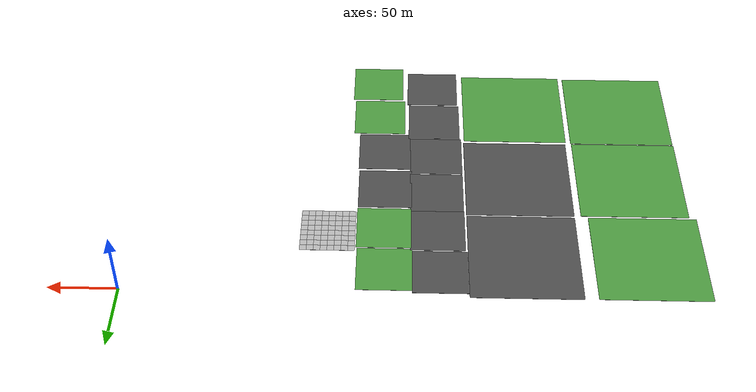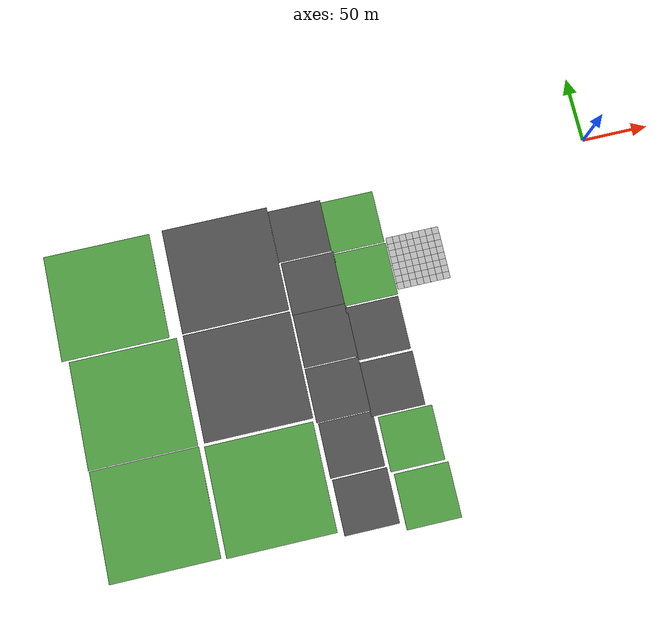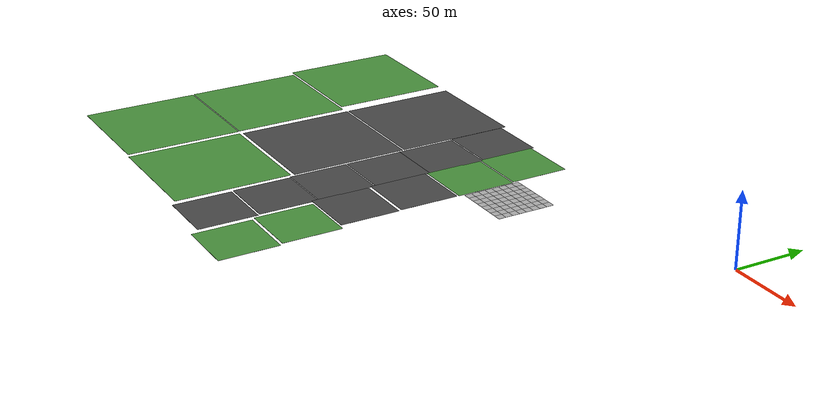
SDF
<sdf version="1.7">
 <world name="default">
  <model name="mud_plane_80x80_4">
   <model name="mud_plane_40x40_2">
    <model name="mud_plane_20x20">
     <model name="mud_plane">
      <static>1</static>
      <link name="link">
       <collision name="collision"><geometry><box><size>10 10 0.1</size></box></geometry></collision>
       <visual name="visual_1">
        <pose>-2.5 2.5 -0.05 0 -0 0</pose>
        <cast_shadows>0</cast_shadows>
        <geometry><box><size>5 5 0.1</size></box></geometry>
        <material>
         <script>
          <uri>model://mud_plane/materials/scripts</uri>
          <uri>model://mud_plane/materials/textures</uri>
          <name>vrc/mud</name>
         </script>
        </material>
       </visual>
       <visual name="visual_2">
        <pose>2.5 2.5 -0.05 0 -0 0</pose>
        <cast_shadows>0</cast_shadows>
        <geometry><box><size>5 5 0.1</size></box></geometry>
        <material>
         <script>
          <uri>model://mud_plane/materials/scripts</uri>
          <uri>model://mud_plane/materials/textures</uri>
          <name>vrc/mud</name>
         </script>
        </material>
       </visual>
       <visual name="visual_3">
        <pose>2.5 -2.5 -0.05 0 -0 0</pose>
        <cast_shadows>0</cast_shadows>
        <geometry><box><size>5 5 0.1</size></box></geometry>
        <material>
         <script>
          <uri>model://mud_plane/materials/scripts</uri>
          <uri>model://mud_plane/materials/textures</uri>
          <name>vrc/mud</name>
         </script>
        </material>
       </visual>
       <visual name="visual_4">
        <pose>-2.5 -2.5 -0.05 0 -0 0</pose>
        <cast_shadows>0</cast_shadows>
        <geometry><box><size>5 5 0.1</size></box></geometry>
        <material>
         <script>
          <uri>model://mud_plane/materials/scripts</uri>
          <uri>model://mud_plane/materials/textures</uri>
          <name>vrc/mud</name>
         </script>
        </material>
       </visual>
      </link>
      <pose>-4.99986 -4.99991 0 0 -0 0</pose>
     </model>
     <model name="mud_plane_0">
      <static>1</static>
      <link name="link">
       <collision name="collision"><geometry><box><size>10 10 0.1</size></box></geometry></collision>
       <visual name="visual_1">
        <pose>-2.5 2.5 -0.05 0 -0 0</pose>
        <cast_shadows>0</cast_shadows>
        <geometry><box><size>5 5 0.1</size></box></geometry>
        <material>
         <script>
          <uri>model://mud_plane/materials/scripts</uri>
          <uri>model://mud_plane/materials/textures</uri>
          <name>vrc/mud</name>
         </script>
        </material>
       </visual>
       <visual name="visual_2">
        <pose>2.5 2.5 -0.05 0 -0 0</pose>
        <cast_shadows>0</cast_shadows>
        <geometry><box><size>5 5 0.1</size></box></geometry>
        <material>
         <script>
          <uri>model://mud_plane/materials/scripts</uri>
          <uri>model://mud_plane/materials/textures</uri>
          <name>vrc/mud</name>
         </script>
        </material>
       </visual>
       <visual name="visual_3">
        <pose>2.5 -2.5 -0.05 0 -0 0</pose>
        <cast_shadows>0</cast_shadows>
        <geometry><box><size>5 5 0.1</size></box></geometry>
        <material>
         <script>
          <uri>model://mud_plane/materials/scripts</uri>
          <uri>model://mud_plane/materials/textures</uri>
          <name>vrc/mud</name>
         </script>
        </material>
       </visual>
       <visual name="visual_4">
        <pose>-2.5 -2.5 -0.05 0 -0 0</pose>
        <cast_shadows>0</cast_shadows>
        <geometry><box><size>5 5 0.1</size></box></geometry>
        <material>
         <script>
          <uri>model://mud_plane/materials/scripts</uri>
          <uri>model://mud_plane/materials/textures</uri>
          <name>vrc/mud</name>
         </script>
        </material>
       </visual>
      </link>
      <pose>-4.99946 4.99954 0 0 -0 0</pose>
     </model>
     <model name="mud_plane_1">
      <static>1</static>
      <link name="link">
       <collision name="collision"><geometry><box><size>10 10 0.1</size></box></geometry></collision>
       <visual name="visual_1">
        <pose>-2.5 2.5 -0.05 0 -0 0</pose>
        <cast_shadows>0</cast_shadows>
        <geometry><box><size>5 5 0.1</size></box></geometry>
        <material>
         <script>
          <uri>model://mud_plane/materials/scripts</uri>
          <uri>model://mud_plane/materials/textures</uri>
          <name>vrc/mud</name>
         </script>
        </material>
       </visual>
       <visual name="visual_2">
        <pose>2.5 2.5 -0.05 0 -0 0</pose>
        <cast_shadows>0</cast_shadows>
        <geometry><box><size>5 5 0.1</size></box></geometry>
        <material>
         <script>
          <uri>model://mud_plane/materials/scripts</uri>
          <uri>model://mud_plane/materials/textures</uri>
          <name>vrc/mud</name>
         </script>
        </material>
       </visual>
       <visual name="visual_3">
        <pose>2.5 -2.5 -0.05 0 -0 0</pose>
        <cast_shadows>0</cast_shadows>
        <geometry><box><size>5 5 0.1</size></box></geometry>
        <material>
         <script>
          <uri>model://mud_plane/materials/scripts</uri>
          <uri>model://mud_plane/materials/textures</uri>
          <name>vrc/mud</name>
         </script>
        </material>
       </visual>
       <visual name="visual_4">
        <pose>-2.5 -2.5 -0.05 0 -0 0</pose>
        <cast_shadows>0</cast_shadows>
        <geometry><box><size>5 5 0.1</size></box></geometry>
        <material>
         <script>
          <uri>model://mud_plane/materials/scripts</uri>
          <uri>model://mud_plane/materials/textures</uri>
          <name>vrc/mud</name>
         </script>
        </material>
       </visual>
      </link>
      <pose>4.99964 -4.99949 0 0 -0 0</pose>
     </model>
     <model name="mud_plane_2">
      <static>1</static>
      <link name="link">
       <collision name="collision"><geometry><box><size>10 10 0.1</size></box></geometry></collision>
       <visual name="visual_1">
        <pose>-2.5 2.5 -0.05 0 -0 0</pose>
        <cast_shadows>0</cast_shadows>
        <geometry><box><size>5 5 0.1</size></box></geometry>
        <material>
         <script>
          <uri>model://mud_plane/materials/scripts</uri>
          <uri>model://mud_plane/materials/textures</uri>
          <name>vrc/mud</name>
         </script>
        </material>
       </visual>
       <visual name="visual_2">
        <pose>2.5 2.5 -0.05 0 -0 0</pose>
        <cast_shadows>0</cast_shadows>
        <geometry><box><size>5 5 0.1</size></box></geometry>
        <material>
         <script>
          <uri>model://mud_plane/materials/scripts</uri>
          <uri>model://mud_plane/materials/textures</uri>
          <name>vrc/mud</name>
         </script>
        </material>
       </visual>
       <visual name="visual_3">
        <pose>2.5 -2.5 -0.05 0 -0 0</pose>
        <cast_shadows>0</cast_shadows>
        <geometry><box><size>5 5 0.1</size></box></geometry>
        <material>
         <script>
          <uri>model://mud_plane/materials/scripts</uri>
          <uri>model://mud_plane/materials/textures</uri>
          <name>vrc/mud</name>
         </script>
        </material>
       </visual>
       <visual name="visual_4">
        <pose>-2.5 -2.5 -0.05 0 -0 0</pose>
        <cast_shadows>0</cast_shadows>
        <geometry><box><size>5 5 0.1</size></box></geometry>
        <material>
         <script>
          <uri>model://mud_plane/materials/scripts</uri>
          <uri>model://mud_plane/materials/textures</uri>
          <name>vrc/mud</name>
         </script>
        </material>
       </visual>
      </link>
      <pose>4.99967 4.99986 0 0 -0 0</pose>
     </model>
     <static>0</static>
     <pose>-9.99895 9.99843 0 0 -0 0</pose>
    </model>
    <model name="mud_plane_20x20_0">
     <model name="mud_plane">
      <static>1</static>
      <link name="link">
       <collision name="collision"><geometry><box><size>10 10 0.1</size></box></geometry></collision>
       <visual name="visual_1">
        <pose>-2.5 2.5 -0.05 0 -0 0</pose>
        <cast_shadows>0</cast_shadows>
        <geometry><box><size>5 5 0.1</size></box></geometry>
        <material>
         <script>
          <uri>model://mud_plane/materials/scripts</uri>
          <uri>model://mud_plane/materials/textures</uri>
          <name>vrc/mud</name>
         </script>
        </material>
       </visual>
       <visual name="visual_2">
        <pose>2.5 2.5 -0.05 0 -0 0</pose>
        <cast_shadows>0</cast_shadows>
        <geometry><box><size>5 5 0.1</size></box></geometry>
        <material>
         <script>
          <uri>model://mud_plane/materials/scripts</uri>
          <uri>model://mud_plane/materials/textures</uri>
          <name>vrc/mud</name>
         </script>
        </material>
       </visual>
       <visual name="visual_3">
        <pose>2.5 -2.5 -0.05 0 -0 0</pose>
        <cast_shadows>0</cast_shadows>
        <geometry><box><size>5 5 0.1</size></box></geometry>
        <material>
         <script>
          <uri>model://mud_plane/materials/scripts</uri>
          <uri>model://mud_plane/materials/textures</uri>
          <name>vrc/mud</name>
         </script>
        </material>
       </visual>
       <visual name="visual_4">
        <pose>-2.5 -2.5 -0.05 0 -0 0</pose>
        <cast_shadows>0</cast_shadows>
        <geometry><box><size>5 5 0.1</size></box></geometry>
        <material>
         <script>
          <uri>model://mud_plane/materials/scripts</uri>
          <uri>model://mud_plane/materials/textures</uri>
          <name>vrc/mud</name>
         </script>
        </material>
       </visual>
      </link>
      <pose>-4.99986 -4.99991 0 0 -0 0</pose>
     </model>
     <model name="mud_plane_0">
      <static>1</static>
      <link name="link">
       <collision name="collision"><geometry><box><size>10 10 0.1</size></box></geometry></collision>
       <visual name="visual_1">
        <pose>-2.5 2.5 -0.05 0 -0 0</pose>
        <cast_shadows>0</cast_shadows>
        <geometry><box><size>5 5 0.1</size></box></geometry>
        <material>
         <script>
          <uri>model://mud_plane/materials/scripts</uri>
          <uri>model://mud_plane/materials/textures</uri>
          <name>vrc/mud</name>
         </script>
        </material>
       </visual>
       <visual name="visual_2">
        <pose>2.5 2.5 -0.05 0 -0 0</pose>
        <cast_shadows>0</cast_shadows>
        <geometry><box><size>5 5 0.1</size></box></geometry>
        <material>
         <script>
          <uri>model://mud_plane/materials/scripts</uri>
          <uri>model://mud_plane/materials/textures</uri>
          <name>vrc/mud</name>
         </script>
        </material>
       </visual>
       <visual name="visual_3">
        <pose>2.5 -2.5 -0.05 0 -0 0</pose>
        <cast_shadows>0</cast_shadows>
        <geometry><box><size>5 5 0.1</size></box></geometry>
        <material>
         <script>
          <uri>model://mud_plane/materials/scripts</uri>
          <uri>model://mud_plane/materials/textures</uri>
          <name>vrc/mud</name>
         </script>
        </material>
       </visual>
       <visual name="visual_4">
        <pose>-2.5 -2.5 -0.05 0 -0 0</pose>
        <cast_shadows>0</cast_shadows>
        <geometry><box><size>5 5 0.1</size></box></geometry>
        <material>
         <script>
          <uri>model://mud_plane/materials/scripts</uri>
          <uri>model://mud_plane/materials/textures</uri>
          <name>vrc/mud</name>
         </script>
        </material>
       </visual>
      </link>
      <pose>-4.99946 4.99954 0 0 -0 0</pose>
     </model>
     <model name="mud_plane_1">
      <static>1</static>
      <link name="link">
       <collision name="collision"><geometry><box><size>10 10 0.1</size></box></geometry></collision>
       <visual name="visual_1">
        <pose>-2.5 2.5 -0.05 0 -0 0</pose>
        <cast_shadows>0</cast_shadows>
        <geometry><box><size>5 5 0.1</size></box></geometry>
        <material>
         <script>
          <uri>model://mud_plane/materials/scripts</uri>
          <uri>model://mud_plane/materials/textures</uri>
          <name>vrc/mud</name>
         </script>
        </material>
       </visual>
       <visual name="visual_2">
        <pose>2.5 2.5 -0.05 0 -0 0</pose>
        <cast_shadows>0</cast_shadows>
        <geometry><box><size>5 5 0.1</size></box></geometry>
        <material>
         <script>
          <uri>model://mud_plane/materials/scripts</uri>
          <uri>model://mud_plane/materials/textures</uri>
          <name>vrc/mud</name>
         </script>
        </material>
       </visual>
       <visual name="visual_3">
        <pose>2.5 -2.5 -0.05 0 -0 0</pose>
        <cast_shadows>0</cast_shadows>
        <geometry><box><size>5 5 0.1</size></box></geometry>
        <material>
         <script>
          <uri>model://mud_plane/materials/scripts</uri>
          <uri>model://mud_plane/materials/textures</uri>
          <name>vrc/mud</name>
         </script>
        </material>
       </visual>
       <visual name="visual_4">
        <pose>-2.5 -2.5 -0.05 0 -0 0</pose>
        <cast_shadows>0</cast_shadows>
        <geometry><box><size>5 5 0.1</size></box></geometry>
        <material>
         <script>
          <uri>model://mud_plane/materials/scripts</uri>
          <uri>model://mud_plane/materials/textures</uri>
          <name>vrc/mud</name>
         </script>
        </material>
       </visual>
      </link>
      <pose>4.99964 -4.99949 0 0 -0 0</pose>
     </model>
     <model name="mud_plane_2">
      <static>1</static>
      <link name="link">
       <collision name="collision"><geometry><box><size>10 10 0.1</size></box></geometry></collision>
       <visual name="visual_1">
        <pose>-2.5 2.5 -0.05 0 -0 0</pose>
        <cast_shadows>0</cast_shadows>
        <geometry><box><size>5 5 0.1</size></box></geometry>
        <material>
         <script>
          <uri>model://mud_plane/materials/scripts</uri>
          <uri>model://mud_plane/materials/textures</uri>
          <name>vrc/mud</name>
         </script>
        </material>
       </visual>
       <visual name="visual_2">
        <pose>2.5 2.5 -0.05 0 -0 0</pose>
        <cast_shadows>0</cast_shadows>
        <geometry><box><size>5 5 0.1</size></box></geometry>
        <material>
         <script>
          <uri>model://mud_plane/materials/scripts</uri>
          <uri>model://mud_plane/materials/textures</uri>
          <name>vrc/mud</name>
         </script>
        </material>
       </visual>
       <visual name="visual_3">
        <pose>2.5 -2.5 -0.05 0 -0 0</pose>
        <cast_shadows>0</cast_shadows>
        <geometry><box><size>5 5 0.1</size></box></geometry>
        <material>
         <script>
          <uri>model://mud_plane/materials/scripts</uri>
          <uri>model://mud_plane/materials/textures</uri>
          <name>vrc/mud</name>
         </script>
        </material>
       </visual>
       <visual name="visual_4">
        <pose>-2.5 -2.5 -0.05 0 -0 0</pose>
        <cast_shadows>0</cast_shadows>
        <geometry><box><size>5 5 0.1</size></box></geometry>
        <material>
         <script>
          <uri>model://mud_plane/materials/scripts</uri>
          <uri>model://mud_plane/materials/textures</uri>
          <name>vrc/mud</name>
         </script>
        </material>
       </visual>
      </link>
      <pose>4.99967 4.99986 0 0 -0 0</pose>
     </model>
     <static>0</static>
     <pose>9.99933 9.9997 0 0 -0 0</pose>
    </model>
    <model name="mud_plane_20x20_1">
     <model name="mud_plane">
      <static>1</static>
      <link name="link">
       <collision name="collision"><geometry><box><size>10 10 0.1</size></box></geometry></collision>
       <visual name="visual_1">
        <pose>-2.5 2.5 -0.05 0 -0 0</pose>
        <cast_shadows>0</cast_shadows>
        <geometry><box><size>5 5 0.1</size></box></geometry>
        <material>
         <script>
          <uri>model://mud_plane/materials/scripts</uri>
          <uri>model://mud_plane/materials/textures</uri>
          <name>vrc/mud</name>
         </script>
        </material>
       </visual>
       <visual name="visual_2">
        <pose>2.5 2.5 -0.05 0 -0 0</pose>
        <cast_shadows>0</cast_shadows>
        <geometry><box><size>5 5 0.1</size></box></geometry>
        <material>
         <script>
          <uri>model://mud_plane/materials/scripts</uri>
          <uri>model://mud_plane/materials/textures</uri>
          <name>vrc/mud</name>
         </script>
        </material>
       </visual>
       <visual name="visual_3">
        <pose>2.5 -2.5 -0.05 0 -0 0</pose>
        <cast_shadows>0</cast_shadows>
        <geometry><box><size>5 5 0.1</size></box></geometry>
        <material>
         <script>
          <uri>model://mud_plane/materials/scripts</uri>
          <uri>model://mud_plane/materials/textures</uri>
          <name>vrc/mud</name>
         </script>
        </material>
       </visual>
       <visual name="visual_4">
        <pose>-2.5 -2.5 -0.05 0 -0 0</pose>
        <cast_shadows>0</cast_shadows>
        <geometry><box><size>5 5 0.1</size></box></geometry>
        <material>
         <script>
          <uri>model://mud_plane/materials/scripts</uri>
          <uri>model://mud_plane/materials/textures</uri>
          <name>vrc/mud</name>
         </script>
        </material>
       </visual>
      </link>
      <pose>-4.99986 -4.99991 0 0 -0 0</pose>
     </model>
     <model name="mud_plane_0">
      <static>1</static>
      <link name="link">
       <collision name="collision"><geometry><box><size>10 10 0.1</size></box></geometry></collision>
       <visual name="visual_1">
        <pose>-2.5 2.5 -0.05 0 -0 0</pose>
        <cast_shadows>0</cast_shadows>
        <geometry><box><size>5 5 0.1</size></box></geometry>
        <material>
         <script>
          <uri>model://mud_plane/materials/scripts</uri>
          <uri>model://mud_plane/materials/textures</uri>
          <name>vrc/mud</name>
         </script>
        </material>
       </visual>
       <visual name="visual_2">
        <pose>2.5 2.5 -0.05 0 -0 0</pose>
        <cast_shadows>0</cast_shadows>
        <geometry><box><size>5 5 0.1</size></box></geometry>
        <material>
         <script>
          <uri>model://mud_plane/materials/scripts</uri>
          <uri>model://mud_plane/materials/textures</uri>
          <name>vrc/mud</name>
         </script>
        </material>
       </visual>
       <visual name="visual_3">
        <pose>2.5 -2.5 -0.05 0 -0 0</pose>
        <cast_shadows>0</cast_shadows>
        <geometry><box><size>5 5 0.1</size></box></geometry>
        <material>
         <script>
          <uri>model://mud_plane/materials/scripts</uri>
          <uri>model://mud_plane/materials/textures</uri>
          <name>vrc/mud</name>
         </script>
        </material>
       </visual>
       <visual name="visual_4">
        <pose>-2.5 -2.5 -0.05 0 -0 0</pose>
        <cast_shadows>0</cast_shadows>
        <geometry><box><size>5 5 0.1</size></box></geometry>
        <material>
         <script>
          <uri>model://mud_plane/materials/scripts</uri>
          <uri>model://mud_plane/materials/textures</uri>
          <name>vrc/mud</name>
         </script>
        </material>
       </visual>
      </link>
      <pose>-4.99946 4.99954 0 0 -0 0</pose>
     </model>
     <model name="mud_plane_1">
      <static>1</static>
      <link name="link">
       <collision name="collision"><geometry><box><size>10 10 0.1</size></box></geometry></collision>
       <visual name="visual_1">
        <pose>-2.5 2.5 -0.05 0 -0 0</pose>
        <cast_shadows>0</cast_shadows>
        <geometry><box><size>5 5 0.1</size></box></geometry>
        <material>
         <script>
          <uri>model://mud_plane/materials/scripts</uri>
          <uri>model://mud_plane/materials/textures</uri>
          <name>vrc/mud</name>
         </script>
        </material>
       </visual>
       <visual name="visual_2">
        <pose>2.5 2.5 -0.05 0 -0 0</pose>
        <cast_shadows>0</cast_shadows>
        <geometry><box><size>5 5 0.1</size></box></geometry>
        <material>
         <script>
          <uri>model://mud_plane/materials/scripts</uri>
          <uri>model://mud_plane/materials/textures</uri>
          <name>vrc/mud</name>
         </script>
        </material>
       </visual>
       <visual name="visual_3">
        <pose>2.5 -2.5 -0.05 0 -0 0</pose>
        <cast_shadows>0</cast_shadows>
        <geometry><box><size>5 5 0.1</size></box></geometry>
        <material>
         <script>
          <uri>model://mud_plane/materials/scripts</uri>
          <uri>model://mud_plane/materials/textures</uri>
          <name>vrc/mud</name>
         </script>
        </material>
       </visual>
       <visual name="visual_4">
        <pose>-2.5 -2.5 -0.05 0 -0 0</pose>
        <cast_shadows>0</cast_shadows>
        <geometry><box><size>5 5 0.1</size></box></geometry>
        <material>
         <script>
          <uri>model://mud_plane/materials/scripts</uri>
          <uri>model://mud_plane/materials/textures</uri>
          <name>vrc/mud</name>
         </script>
        </material>
       </visual>
      </link>
      <pose>4.99964 -4.99949 0 0 -0 0</pose>
     </model>
     <model name="mud_plane_2">
      <static>1</static>
      <link name="link">
       <collision name="collision"><geometry><box><size>10 10 0.1</size></box></geometry></collision>
       <visual name="visual_1">
        <pose>-2.5 2.5 -0.05 0 -0 0</pose>
        <cast_shadows>0</cast_shadows>
        <geometry><box><size>5 5 0.1</size></box></geometry>
        <material>
         <script>
          <uri>model://mud_plane/materials/scripts</uri>
          <uri>model://mud_plane/materials/textures</uri>
          <name>vrc/mud</name>
         </script>
        </material>
       </visual>
       <visual name="visual_2">
        <pose>2.5 2.5 -0.05 0 -0 0</pose>
        <cast_shadows>0</cast_shadows>
        <geometry><box><size>5 5 0.1</size></box></geometry>
        <material>
         <script>
          <uri>model://mud_plane/materials/scripts</uri>
          <uri>model://mud_plane/materials/textures</uri>
          <name>vrc/mud</name>
         </script>
        </material>
       </visual>
       <visual name="visual_3">
        <pose>2.5 -2.5 -0.05 0 -0 0</pose>
        <cast_shadows>0</cast_shadows>
        <geometry><box><size>5 5 0.1</size></box></geometry>
        <material>
         <script>
          <uri>model://mud_plane/materials/scripts</uri>
          <uri>model://mud_plane/materials/textures</uri>
          <name>vrc/mud</name>
         </script>
        </material>
       </visual>
       <visual name="visual_4">
        <pose>-2.5 -2.5 -0.05 0 -0 0</pose>
        <cast_shadows>0</cast_shadows>
        <geometry><box><size>5 5 0.1</size></box></geometry>
        <material>
         <script>
          <uri>model://mud_plane/materials/scripts</uri>
          <uri>model://mud_plane/materials/textures</uri>
          <name>vrc/mud</name>
         </script>
        </material>
       </visual>
      </link>
      <pose>4.99967 4.99986 0 0 -0 0</pose>
     </model>
     <static>0</static>
     <pose>9.9993 -9.99877 0 0 -0 0</pose>
    </model>
    <model name="mud_plane_20x20_2">
     <model name="mud_plane">
      <static>1</static>
      <link name="link">
       <collision name="collision"><geometry><box><size>10 10 0.1</size></box></geometry></collision>
       <visual name="visual_1">
        <pose>-2.5 2.5 -0.05 0 -0 0</pose>
        <cast_shadows>0</cast_shadows>
        <geometry><box><size>5 5 0.1</size></box></geometry>
        <material>
         <script>
          <uri>model://mud_plane/materials/scripts</uri>
          <uri>model://mud_plane/materials/textures</uri>
          <name>vrc/mud</name>
         </script>
        </material>
       </visual>
       <visual name="visual_2">
        <pose>2.5 2.5 -0.05 0 -0 0</pose>
        <cast_shadows>0</cast_shadows>
        <geometry><box><size>5 5 0.1</size></box></geometry>
        <material>
         <script>
          <uri>model://mud_plane/materials/scripts</uri>
          <uri>model://mud_plane/materials/textures</uri>
          <name>vrc/mud</name>
         </script>
        </material>
       </visual>
       <visual name="visual_3">
        <pose>2.5 -2.5 -0.05 0 -0 0</pose>
        <cast_shadows>0</cast_shadows>
        <geometry><box><size>5 5 0.1</size></box></geometry>
        <material>
         <script>
          <uri>model://mud_plane/materials/scripts</uri>
          <uri>model://mud_plane/materials/textures</uri>
          <name>vrc/mud</name>
         </script>
        </material>
       </visual>
       <visual name="visual_4">
        <pose>-2.5 -2.5 -0.05 0 -0 0</pose>
        <cast_shadows>0</cast_shadows>
        <geometry><box><size>5 5 0.1</size></box></geometry>
        <material>
         <script>
          <uri>model://mud_plane/materials/scripts</uri>
          <uri>model://mud_plane/materials/textures</uri>
          <name>vrc/mud</name>
         </script>
        </material>
       </visual>
      </link>
      <pose>-4.99986 -4.99991 0 0 -0 0</pose>
     </model>
     <model name="mud_plane_0">
      <static>1</static>
      <link name="link">
       <collision name="collision"><geometry><box><size>10 10 0.1</size></box></geometry></collision>
       <visual name="visual_1">
        <pose>-2.5 2.5 -0.05 0 -0 0</pose>
        <cast_shadows>0</cast_shadows>
        <geometry><box><size>5 5 0.1</size></box></geometry>
        <material>
         <script>
          <uri>model://mud_plane/materials/scripts</uri>
          <uri>model://mud_plane/materials/textures</uri>
          <name>vrc/mud</name>
         </script>
        </material>
       </visual>
       <visual name="visual_2">
        <pose>2.5 2.5 -0.05 0 -0 0</pose>
        <cast_shadows>0</cast_shadows>
        <geometry><box><size>5 5 0.1</size></box></geometry>
        <material>
         <script>
          <uri>model://mud_plane/materials/scripts</uri>
          <uri>model://mud_plane/materials/textures</uri>
          <name>vrc/mud</name>
         </script>
        </material>
       </visual>
       <visual name="visual_3">
        <pose>2.5 -2.5 -0.05 0 -0 0</pose>
        <cast_shadows>0</cast_shadows>
        <geometry><box><size>5 5 0.1</size></box></geometry>
        <material>
         <script>
          <uri>model://mud_plane/materials/scripts</uri>
          <uri>model://mud_plane/materials/textures</uri>
          <name>vrc/mud</name>
         </script>
        </material>
       </visual>
       <visual name="visual_4">
        <pose>-2.5 -2.5 -0.05 0 -0 0</pose>
        <cast_shadows>0</cast_shadows>
        <geometry><box><size>5 5 0.1</size></box></geometry>
        <material>
         <script>
          <uri>model://mud_plane/materials/scripts</uri>
          <uri>model://mud_plane/materials/textures</uri>
          <name>vrc/mud</name>
         </script>
        </material>
       </visual>
      </link>
      <pose>-4.99946 4.99954 0 0 -0 0</pose>
     </model>
     <model name="mud_plane_1">
      <static>1</static>
      <link name="link">
       <collision name="collision"><geometry><box><size>10 10 0.1</size></box></geometry></collision>
       <visual name="visual_1">
        <pose>-2.5 2.5 -0.05 0 -0 0</pose>
        <cast_shadows>0</cast_shadows>
        <geometry><box><size>5 5 0.1</size></box></geometry>
        <material>
         <script>
          <uri>model://mud_plane/materials/scripts</uri>
          <uri>model://mud_plane/materials/textures</uri>
          <name>vrc/mud</name>
         </script>
        </material>
       </visual>
       <visual name="visual_2">
        <pose>2.5 2.5 -0.05 0 -0 0</pose>
        <cast_shadows>0</cast_shadows>
        <geometry><box><size>5 5 0.1</size></box></geometry>
        <material>
         <script>
          <uri>model://mud_plane/materials/scripts</uri>
          <uri>model://mud_plane/materials/textures</uri>
          <name>vrc/mud</name>
         </script>
        </material>
       </visual>
       <visual name="visual_3">
        <pose>2.5 -2.5 -0.05 0 -0 0</pose>
        <cast_shadows>0</cast_shadows>
        <geometry><box><size>5 5 0.1</size></box></geometry>
        <material>
         <script>
          <uri>model://mud_plane/materials/scripts</uri>
          <uri>model://mud_plane/materials/textures</uri>
          <name>vrc/mud</name>
         </script>
        </material>
       </visual>
       <visual name="visual_4">
        <pose>-2.5 -2.5 -0.05 0 -0 0</pose>
        <cast_shadows>0</cast_shadows>
        <geometry><box><size>5 5 0.1</size></box></geometry>
        <material>
         <script>
          <uri>model://mud_plane/materials/scripts</uri>
          <uri>model://mud_plane/materials/textures</uri>
          <name>vrc/mud</name>
         </script>
        </material>
       </visual>
      </link>
      <pose>4.99964 -4.99949 0 0 -0 0</pose>
     </model>
     <model name="mud_plane_2">
      <static>1</static>
      <link name="link">
       <collision name="collision"><geometry><box><size>10 10 0.1</size></box></geometry></collision>
       <visual name="visual_1">
        <pose>-2.5 2.5 -0.05 0 -0 0</pose>
        <cast_shadows>0</cast_shadows>
        <geometry><box><size>5 5 0.1</size></box></geometry>
        <material>
         <script>
          <uri>model://mud_plane/materials/scripts</uri>
          <uri>model://mud_plane/materials/textures</uri>
          <name>vrc/mud</name>
         </script>
        </material>
       </visual>
       <visual name="visual_2">
        <pose>2.5 2.5 -0.05 0 -0 0</pose>
        <cast_shadows>0</cast_shadows>
        <geometry><box><size>5 5 0.1</size></box></geometry>
        <material>
         <script>
          <uri>model://mud_plane/materials/scripts</uri>
          <uri>model://mud_plane/materials/textures</uri>
          <name>vrc/mud</name>
         </script>
        </material>
       </visual>
       <visual name="visual_3">
        <pose>2.5 -2.5 -0.05 0 -0 0</pose>
        <cast_shadows>0</cast_shadows>
        <geometry><box><size>5 5 0.1</size></box></geometry>
        <material>
         <script>
          <uri>model://mud_plane/materials/scripts</uri>
          <uri>model://mud_plane/materials/textures</uri>
          <name>vrc/mud</name>
         </script>
        </material>
       </visual>
       <visual name="visual_4">
        <pose>-2.5 -2.5 -0.05 0 -0 0</pose>
        <cast_shadows>0</cast_shadows>
        <geometry><box><size>5 5 0.1</size></box></geometry>
        <material>
         <script>
          <uri>model://mud_plane/materials/scripts</uri>
          <uri>model://mud_plane/materials/textures</uri>
          <name>vrc/mud</name>
         </script>
        </material>
       </visual>
      </link>
      <pose>4.99967 4.99986 0 0 -0 0</pose>
     </model>
     <static>0</static>
     <pose>-9.99969 -9.99935 0 0 -0 0</pose>
    </model>
    <static>0</static>
    <pose>-19.9989 -19.9993 0 0 -0 0</pose>
   </model>
   <static>0</static>
   <pose>-124.144 -40.594 0 0 -0 0</pose>
  </model>
  <model name="asphalt_plane_40x40_4">
   <pose>-285.943 -118.799 -0.05 0 -0 0</pose>
   <static>1</static>
   <link name="link">
    <collision name="collision"><geometry><box><size>80 80 0.1</size></box></geometry></collision>
    <visual name="visual">
     <cast_shadows>0</cast_shadows>
     <geometry><box><size>80 80 0.1</size></box></geometry>
     <material>
      <script>
       <uri>model://asphalt_plane_40x40/materials/scripts</uri>
       <uri>model://asphalt_plane_40x40/materials/textures</uri>
       <name>vrc/asphalt</name>
      </script>
     </material>
    </visual>
   </link>
  </model>
  <model name="asphalt_plane_40x40_5">
   <pose>-285.997 -37.5573 -0.05 0 -0 0</pose>
   <static>1</static>
   <link name="link">
    <collision name="collision"><geometry><box><size>80 80 0.1</size></box></geometry></collision>
    <visual name="visual">
     <cast_shadows>0</cast_shadows>
     <geometry><box><size>80 80 0.1</size></box></geometry>
     <material>
      <script>
       <uri>model://asphalt_plane_40x40/materials/scripts</uri>
       <uri>model://asphalt_plane_40x40/materials/textures</uri>
       <name>vrc/asphalt</name>
      </script>
     </material>
    </visual>
   </link>
  </model>
  <model name="asphalt_plane_40x40_7">
   <pose>-225.74 -21.094 -0.05 0 -0 0</pose>
   <static>1</static>
   <link name="link">
    <collision name="collision"><geometry><box><size>40 40 0.1</size></box></geometry></collision>
    <visual name="visual">
     <cast_shadows>0</cast_shadows>
     <geometry><box><size>40 40 0.1</size></box></geometry>
     <material>
      <script>
       <uri>model://asphalt_plane_40x40/materials/scripts</uri>
       <uri>model://asphalt_plane_40x40/materials/textures</uri>
       <name>vrc/asphalt</name>
      </script>
     </material>
    </visual>
   </link>
  </model>
  <model name="asphalt_plane_40x40_8">
   <pose>-224.428 -62.0416 -0.05 0 -0 0</pose>
   <static>1</static>
   <link name="link">
    <collision name="collision"><geometry><box><size>40 40 0.1</size></box></geometry></collision>
    <visual name="visual">
     <cast_shadows>0</cast_shadows>
     <geometry><box><size>40 40 0.1</size></box></geometry>
     <material>
      <script>
       <uri>model://asphalt_plane_40x40/materials/scripts</uri>
       <uri>model://asphalt_plane_40x40/materials/textures</uri>
       <name>vrc/asphalt</name>
      </script>
     </material>
    </visual>
   </link>
  </model>
  <model name="asphalt_plane_40x40_9">
   <pose>-224.173 -102.017 -0.05 0 -0 0</pose>
   <static>1</static>
   <link name="link">
    <collision name="collision"><geometry><box><size>40 40 0.1</size></box></geometry></collision>
    <visual name="visual">
     <cast_shadows>0</cast_shadows>
     <geometry><box><size>40 40 0.1</size></box></geometry>
     <material>
      <script>
       <uri>model://asphalt_plane_40x40/materials/scripts</uri>
       <uri>model://asphalt_plane_40x40/materials/textures</uri>
       <name>vrc/asphalt</name>
      </script>
     </material>
    </visual>
   </link>
  </model>
  <model name="grass_plane_40x40_4">
   <pose>-185.775 -23.0855 -0.05 0 -0 0</pose>
   <static>1</static>
   <link name="link">
    <collision name="collision"><geometry><box><size>40 40 0.1</size></box></geometry></collision>
    <visual name="grass">
     <cast_shadows>0</cast_shadows>
     <geometry><box><size>40 40 0.1</size></box></geometry>
     <material>
      <script><uri>file://media/materials/scripts/gazebo.material</uri><name>Gazebo/Grass</name></script>
     </material>
    </visual>
   </link>
  </model>
  <model name="grass_plane_40x40_5">
   <pose>-185.032 -64.0572 -0.05 0 -0 0</pose>
   <static>1</static>
   <link name="link">
    <collision name="collision"><geometry><box><size>40 40 0.1</size></box></geometry></collision>
    <visual name="grass">
     <cast_shadows>0</cast_shadows>
     <geometry><box><size>40 40 0.1</size></box></geometry>
     <material>
      <script><uri>file://media/materials/scripts/gazebo.material</uri><name>Gazebo/Grass</name></script>
     </material>
    </visual>
   </link>
  </model>
  <model name="asphalt_plane_40x40_10">
   <pose>-224.133 -142.857 -0.05 0 -0 0</pose>
   <static>1</static>
   <link name="link">
    <collision name="collision"><geometry><box><size>40 40 0.1</size></box></geometry></collision>
    <visual name="visual">
     <cast_shadows>0</cast_shadows>
     <geometry><box><size>40 40 0.1</size></box></geometry>
     <material>
      <script>
       <uri>model://asphalt_plane_40x40/materials/scripts</uri>
       <uri>model://asphalt_plane_40x40/materials/textures</uri>
       <name>vrc/asphalt</name>
      </script>
     </material>
    </visual>
   </link>
  </model>
  <model name="asphalt_plane_40x40">
   <pose>-223.051 -183.488 -0.05 0 -0 0</pose>
   <static>1</static>
   <link name="link">
    <collision name="collision"><geometry><box><size>40 40 0.1</size></box></geometry></collision>
    <visual name="visual">
     <cast_shadows>0</cast_shadows>
     <geometry><box><size>40 40 0.1</size></box></geometry>
     <material>
      <script>
       <uri>model://asphalt_plane_40x40/materials/scripts</uri>
       <uri>model://asphalt_plane_40x40/materials/textures</uri>
       <name>vrc/asphalt</name>
      </script>
     </material>
    </visual>
   </link>
  </model>
  <model name="grass_plane_80x80_7">
   <pose>-375.83 -37.8171 -0.05 0 -0 0</pose>
   <static>1</static>
   <link name="link">
    <collision name="collision"><geometry><box><size>80 80 0.1</size></box></geometry></collision>
    <visual name="grass">
     <cast_shadows>0</cast_shadows>
     <geometry><box><size>80 80 0.1</size></box></geometry>
     <material>
      <script><uri>file://media/materials/scripts/gazebo.material</uri><name>Gazebo/Grass</name></script>
     </material>
    </visual>
   </link>
  </model>
  <model name="grass_plane_80x80_8">
   <pose>-370.819 -119.411 -0.05 0 -0 0</pose>
   <static>1</static>
   <link name="link">
    <collision name="collision"><geometry><box><size>80 80 0.1</size></box></geometry></collision>
    <visual name="grass">
     <cast_shadows>0</cast_shadows>
     <geometry><box><size>80 80 0.1</size></box></geometry>
     <material>
      <script><uri>file://media/materials/scripts/gazebo.material</uri><name>Gazebo/Grass</name></script>
     </material>
    </visual>
   </link>
  </model>
  <model name="asphalt_plane_40x40_3">
   <pose>-185.276 -105.339 -0.05 0 -0 0</pose>
   <static>1</static>
   <link name="link">
    <collision name="collision"><geometry><box><size>40 40 0.1</size></box></geometry></collision>
    <visual name="visual">
     <cast_shadows>0</cast_shadows>
     <geometry><box><size>40 40 0.1</size></box></geometry>
     <material>
      <script>
       <uri>model://asphalt_plane_40x40/materials/scripts</uri>
       <uri>model://asphalt_plane_40x40/materials/textures</uri>
       <name>vrc/asphalt</name>
      </script>
     </material>
    </visual>
   </link>
  </model>
  <model name="asphalt_plane_40x40_6">
   <pose>-184.598 -147.353 -0.05 0 -0 0</pose>
   <static>1</static>
   <link name="link">
    <collision name="collision"><geometry><box><size>40 40 0.1</size></box></geometry></collision>
    <visual name="visual">
     <cast_shadows>0</cast_shadows>
     <geometry><box><size>40 40 0.1</size></box></geometry>
     <material>
      <script>
       <uri>model://asphalt_plane_40x40/materials/scripts</uri>
       <uri>model://asphalt_plane_40x40/materials/textures</uri>
       <name>vrc/asphalt</name>
      </script>
     </material>
    </visual>
   </link>
  </model>
  <model name="grass_plane_40x40_6">
   <pose>-179.998 -188.702 -0.05 0 -0 0</pose>
   <static>1</static>
   <link name="link">
    <collision name="collision"><geometry><box><size>40 40 0.1</size></box></geometry></collision>
    <visual name="grass">
     <cast_shadows>0</cast_shadows>
     <geometry><box><size>40 40 0.1</size></box></geometry>
     <material>
      <script><uri>file://media/materials/scripts/gazebo.material</uri><name>Gazebo/Grass</name></script>
     </material>
    </visual>
   </link>
  </model>
  <model name="grass_plane_80x80_9">
   <pose>-370.334 -200.148 -0.05 0 -0 0</pose>
   <static>1</static>
   <link name="link">
    <collision name="collision"><geometry><box><size>80 80 0.1</size></box></geometry></collision>
    <visual name="grass">
     <cast_shadows>0</cast_shadows>
     <geometry><box><size>80 80 0.1</size></box></geometry>
     <material>
      <script><uri>file://media/materials/scripts/gazebo.material</uri><name>Gazebo/Grass</name></script>
     </material>
    </visual>
   </link>
  </model>
  <model name="grass_plane_80x80_10">
   <pose>-286.57 -201.184 -0.05 0 -0 0</pose>
   <static>1</static>
   <link name="link">
    <collision name="collision"><geometry><box><size>80 80 0.1</size></box></geometry></collision>
    <visual name="grass">
     <cast_shadows>0</cast_shadows>
     <geometry><box><size>80 80 0.1</size></box></geometry>
     <material>
      <script><uri>file://media/materials/scripts/gazebo.material</uri><name>Gazebo/Grass</name></script>
     </material>
    </visual>
   </link>
  </model>
  <model name="asphalt_plane_40x40_11">
   <pose>-222.075 -224.765 -0.05 0 -0 0</pose>
   <static>1</static>
   <link name="link">
    <collision name="collision"><geometry><box><size>40 40 0.1</size></box></geometry></collision>
    <visual name="visual">
     <cast_shadows>0</cast_shadows>
     <geometry><box><size>40 40 0.1</size></box></geometry>
     <material>
      <script>
       <uri>model://asphalt_plane_40x40/materials/scripts</uri>
       <uri>model://asphalt_plane_40x40/materials/textures</uri>
       <name>vrc/asphalt</name>
      </script>
     </material>
    </visual>
   </link>
  </model>
  <model name="grass_plane_40x40_7">
   <pose>-178.124 -230.654 -0.05 0 -0 0</pose>
   <static>1</static>
   <link name="link">
    <collision name="collision"><geometry><box><size>40 40 0.1</size></box></geometry></collision>
    <visual name="grass">
     <cast_shadows>0</cast_shadows>
     <geometry><box><size>40 40 0.1</size></box></geometry>
     <material>
      <script><uri>file://media/materials/scripts/gazebo.material</uri><name>Gazebo/Grass</name></script>
     </material>
    </visual>
   </link>
  </model>
 </world>
</sdf>
